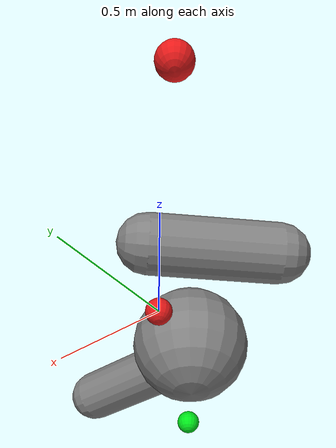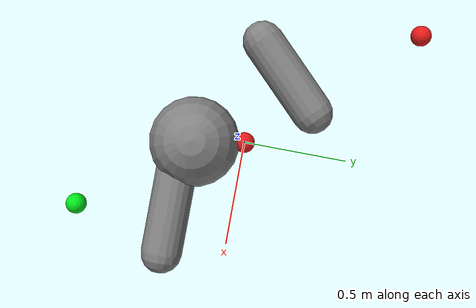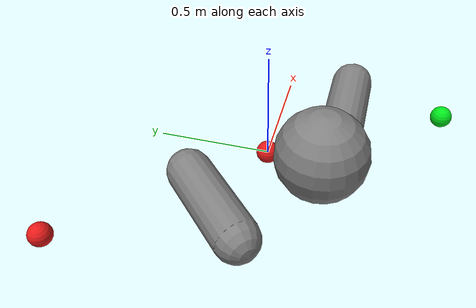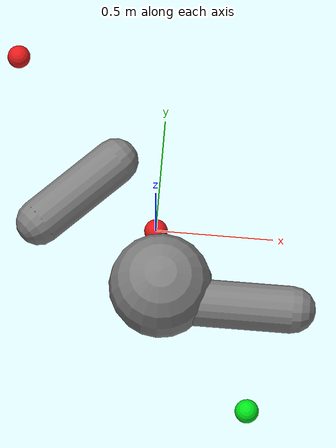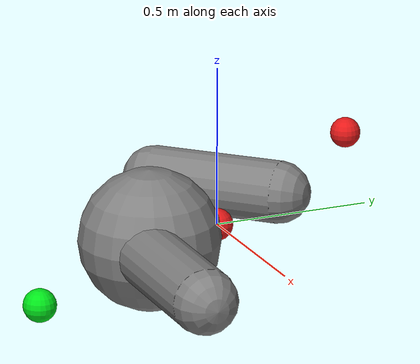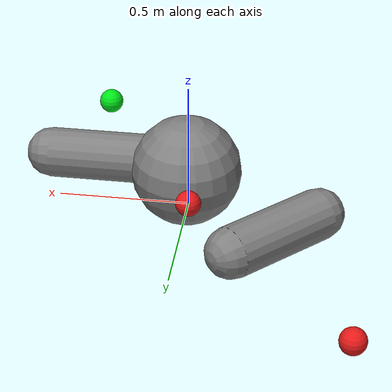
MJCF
<mujoco model="linearparticle">

    <compiler inertiafromgeom="true" angle="radian" coordinate="local" />
    <option timestep="0.01" gravity="0 0 0" iterations="20" integrator="Euler" />
    <default>
        <joint limited="false" damping="1" />
        <geom contype="2" conaffinity="1" condim="1" friction=".5 .1 .1" density="1000" margin="0.002" />
    </default>

    <worldbody><body name="particle" pos="0.0 0.0 0.0">
<geom name="particle_geom" type="sphere" size="0.05" rgba="0.9 0.1 0.1 1"/>
<site name="particle_site" pos="0 0 0" size="0.01" />
<joint name="ball_x" type="slide" pos="0 0 0" axis="1 0 0" />
<joint name="ball_y" type="slide" pos="0 0 0" axis="0 1 0" />
</body>
<body name="x0" pos="-0.664937083073 0.75 0.0">
<geom name="x0_geom" type="sphere" size="0.05" rgba="0.9 0.1 0.1 1"/>
</body>
<body name="target" pos="0.439162205374 -0.75 0">
<geom name="target_geom" type="sphere" size="0.05" rgba="0 0.9 0.1 1"/>
</body>
<body name="obs0" pos="0.04 -0.24 0">
<geom name="obs0_geom" type="sphere" size="0.220532468706" contype="1"/>
</body>
<body name="obs1" pos="0.3 -0.3 0">
<geom name="obs1_geom" type="capsule" fromto="-0.3 0 0 0.3 0 0" size="0.1" contype="1"/>
</body>
<body name="obs2" pos="-0.2 0.0 0">
<geom name="obs2_geom" type="capsule" fromto="-0.3 0 0 0 0.3 0" size="0.1" contype="1"/>
</body>

    </worldbody>

    <actuator>
        <motor joint="ball_x" ctrlrange="-1.0 1.0" ctrllimited="true"/>
        <motor joint="ball_y" ctrlrange="-1.0 1.0" ctrllimited="true"/>
    </actuator>
</mujoco>
